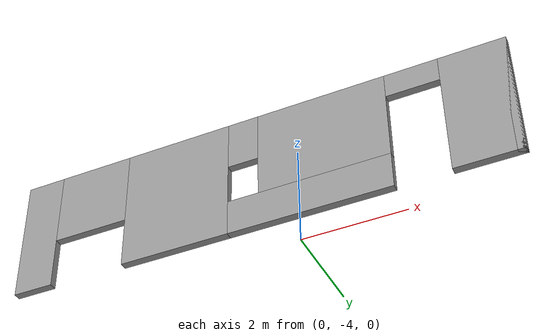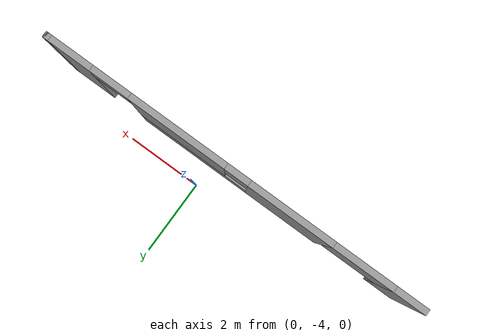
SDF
<?xml version='1.0'?>
<sdf version='1.6'>
  <model name='varying_doors1'>
    <pose frame=''>-0.631979 -4.64634 0 0 -0 0</pose>
    <link name='Wall_4'>
      <pose frame=''>0 0 0 0 -0 0</pose>
      <visual name='Wall_4_Visual_0'>
        <pose frame=''>-4.4791 0 1.25 0 -0 0</pose>
        <geometry>
          <box>
            <size>0.791794 0.15 2.5</size>
          </box>
        </geometry>
        <material>
          <script>
            <uri>file://media/materials/scripts/gazebo.material</uri>
            <name>Gazebo/Grey</name>
          </script>
          <ambient>1 1 1 1</ambient>
        </material>
      </visual>
      <collision name='Wall_4_Collision_0'>
        <geometry>
          <box>
            <size>0.791794 0.15 2.5</size>
          </box>
        </geometry>
        <pose frame=''>-4.4791 0 1.25 0 -0 0</pose>
      </collision>
      <visual name='Wall_4_Visual_1'>
        <pose frame=''>-1.51634 0 1.25 0 -0 0</pose>
        <geometry>
          <box>
            <size>2.13374 0.15 2.5</size>
          </box>
        </geometry>
        <material>
          <script>
            <uri>file://media/materials/scripts/gazebo.material</uri>
            <name>Gazebo/Grey</name>
          </script>
          <ambient>1 1 1 1</ambient>
        </material>
      </visual>
      <collision name='Wall_4_Collision_1'>
        <geometry>
          <box>
            <size>2.13374 0.15 2.5</size>
          </box>
        </geometry>
        <pose frame=''>-1.51634 0 1.25 0 -0 0</pose>
      </collision>
      <visual name='Wall_4_Visual_2'>
        <pose frame=''>4.25599 0 1.25 0 -0 0</pose>
        <geometry>
          <box>
            <size>1.23802 0.15 2.5</size>
          </box>
        </geometry>
        <material>
          <script>
            <uri>file://media/materials/scripts/gazebo.material</uri>
            <name>Gazebo/Grey</name>
          </script>
          <ambient>1 1 1 1</ambient>
        </material>
      </visual>
      <collision name='Wall_4_Collision_2'>
        <geometry>
          <box>
            <size>1.23802 0.15 2.5</size>
          </box>
        </geometry>
        <pose frame=''>4.25599 0 1.25 0 -0 0</pose>
      </collision>
      <visual name='Wall_4_Visual_3'>
        <pose frame=''>1.09376 0 0.35 0 -0 0</pose>
        <geometry>
          <box>
            <size>3.08645 0.15 0.7</size>
          </box>
        </geometry>
        <material>
          <script>
            <uri>file://media/materials/scripts/gazebo.material</uri>
            <name>Gazebo/Grey</name>
          </script>
          <ambient>1 1 1 1</ambient>
        </material>
      </visual>
      <collision name='Wall_4_Collision_3'>
        <geometry>
          <box>
            <size>3.08645 0.15 0.7</size>
          </box>
        </geometry>
        <pose frame=''>1.09376 0 0.35 0 -0 0</pose>
      </collision>
      <visual name='Wall_4_Visual_4'>
        <pose frame=''>1.39376 0 1.6 0 -0 0</pose>
        <geometry>
          <box>
            <size>2.48645 0.15 1.8</size>
          </box>
        </geometry>
        <material>
          <script>
            <uri>file://media/materials/scripts/gazebo.material</uri>
            <name>Gazebo/Grey</name>
          </script>
          <ambient>1 1 1 1</ambient>
        </material>
      </visual>
      <collision name='Wall_4_Collision_4'>
        <geometry>
          <box>
            <size>2.48645 0.15 1.8</size>
          </box>
        </geometry>
        <pose frame=''>1.39376 0 1.6 0 -0 0</pose>
      </collision>
      <visual name='Wall_4_Visual_5'>
        <pose frame=''>-3.33321 0 1.75 0 -0 0</pose>
        <geometry>
          <box>
            <size>1.5 0.15 1.5</size>
          </box>
        </geometry>
        <material>
          <script>
            <uri>file://media/materials/scripts/gazebo.material</uri>
            <name>Gazebo/Grey</name>
          </script>
          <ambient>1 1 1 1</ambient>
        </material>
      </visual>
      <collision name='Wall_4_Collision_5'>
        <geometry>
          <box>
            <size>1.5 0.15 1.5</size>
          </box>
        </geometry>
        <pose frame=''>-3.33321 0 1.75 0 -0 0</pose>
      </collision>
      <visual name='Wall_4_Visual_6'>
        <pose frame=''>-0.149467 0 2 0 -0 0</pose>
        <geometry>
          <box>
            <size>0.6 0.15 1</size>
          </box>
        </geometry>
        <material>
          <script>
            <uri>file://media/materials/scripts/gazebo.material</uri>
            <name>Gazebo/Grey</name>
          </script>
          <ambient>1 1 1 1</ambient>
        </material>
      </visual>
      <collision name='Wall_4_Collision_6'>
        <geometry>
          <box>
            <size>0.6 0.15 1</size>
          </box>
        </geometry>
        <pose frame=''>-0.149467 0 2 0 -0 0</pose>
      </collision>
      <visual name='Wall_4_Visual_7'>
        <pose frame=''>3.13698 0 2.25 0 -0 0</pose>
        <geometry>
          <box>
            <size>1 0.15 0.5</size>
          </box>
        </geometry>
        <material>
          <script>
            <uri>file://media/materials/scripts/gazebo.material</uri>
            <name>Gazebo/Grey</name>
          </script>
          <ambient>1 1 1 1</ambient>
        </material>
      </visual>
      <collision name='Wall_4_Collision_7'>
        <geometry>
          <box>
            <size>1 0.15 0.5</size>
          </box>
        </geometry>
        <pose frame=''>3.13698 0 2.25 0 -0 0</pose>
      </collision>
    </link>
    <link name='Wall_5'>
      <collision name='Wall_5_Collision'>
        <geometry>
          <box>
            <size>0.15 0.15 2.5</size>
          </box>
        </geometry>
        <pose frame=''>0 0 1.25 0 -0 0</pose>
      </collision>
      <visual name='Wall_5_Visual'>
        <pose frame=''>0 0 1.25 0 -0 0</pose>
        <geometry>
          <box>
            <size>0.15 0.15 2.5</size>
          </box>
        </geometry>
        <material>
          <script>
            <uri>file://media/materials/scripts/gazebo.material</uri>
            <name>Gazebo/Grey</name>
          </script>
          <ambient>1 1 1 1</ambient>
        </material>
      </visual>
      <pose frame=''>4.8 0 0 0 -0 0</pose>
    </link>
    <static>1</static>
  </model>
</sdf>
